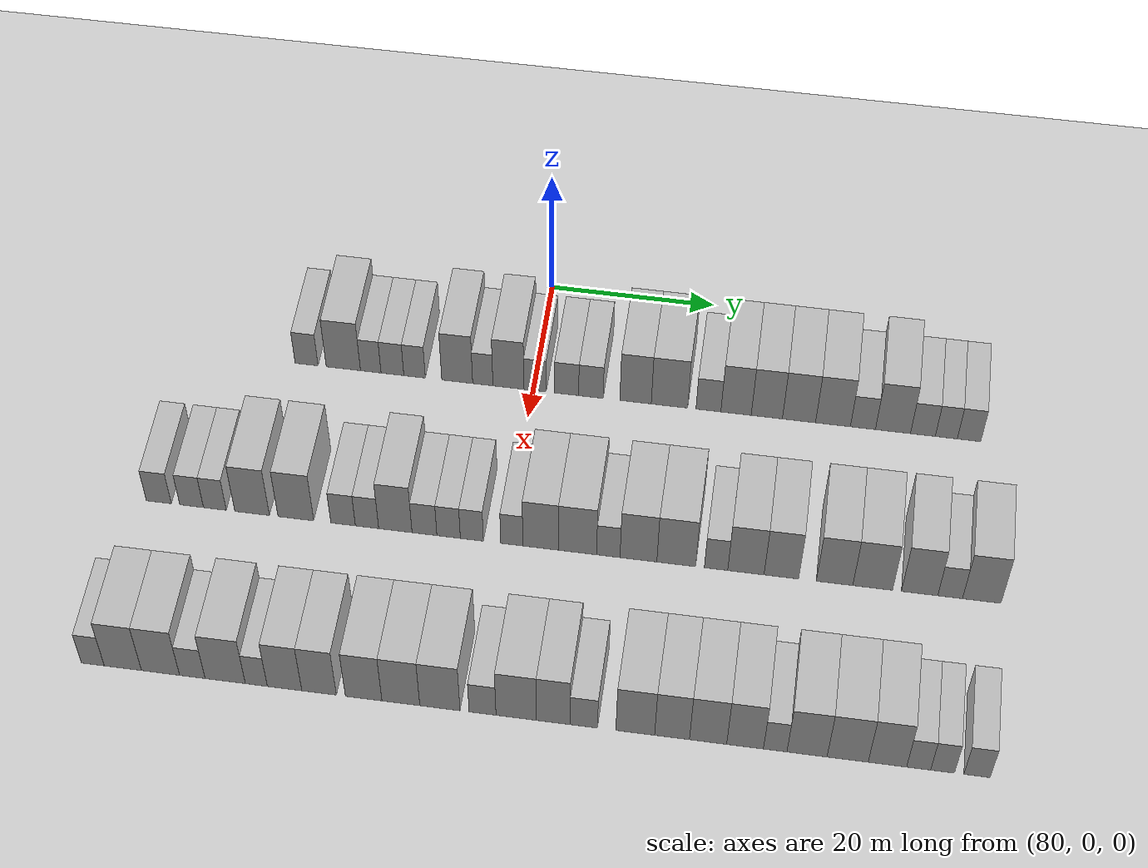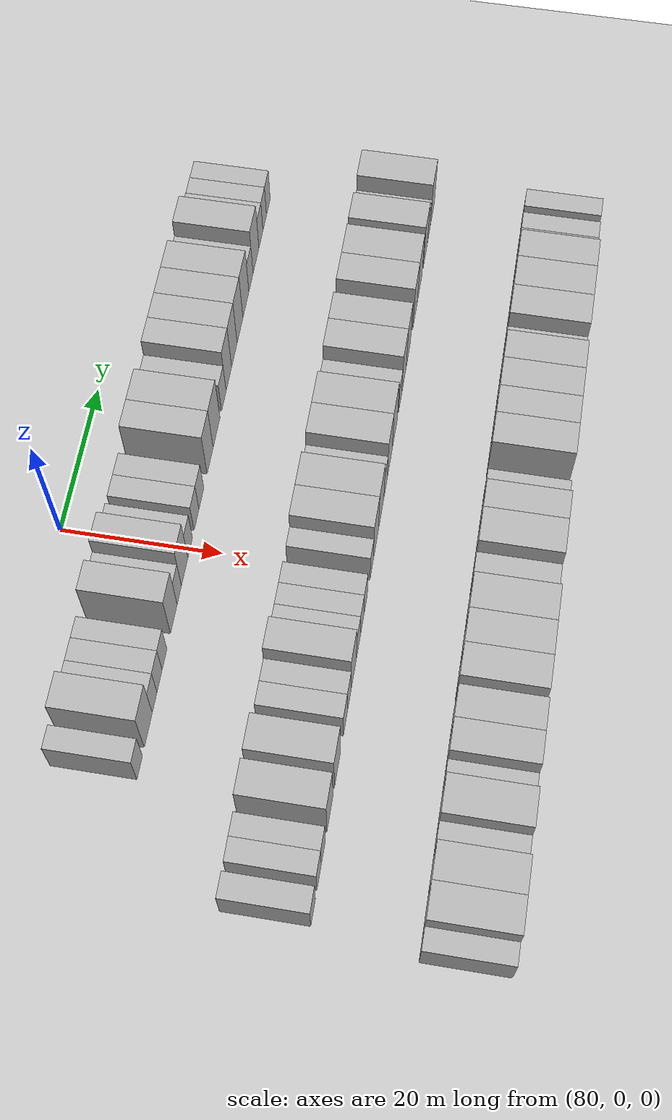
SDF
<sdf version="1.6">
 <world name="default">
  <include>
   <name>ground_plane_2</name>
   <uri>model://HANNAS_ground_plane</uri>
   <pose>100 0 0  0 0 0</pose>
  </include>
  <model name="building_658">
   <static>1</static>
   <pose>91.0000 -27.6144 0 0.000000 0.000000 0.000000</pose>
   <link name="link">
    <pose>0 0 3.00 0 0 0</pose>
    <collision name="collision"><geometry><box><size>10.0000 2.8052 6.0000</size></box></geometry></collision>
    <visual name="visual">
     <cast_shadows>0</cast_shadows>
     <geometry><box><size>10.0000 2.8052 6.0000</size></box></geometry>
     <material>
      <script>
       <uri>model://HANNAS_wall/materials/scripts</uri>
       <uri>model://HANNAS_wall/materials/textures</uri>
       <name>vrc/HANNAS_wall</name>
      </script>
     </material>
    </visual>
   </link>
  </model>
  <model name="building_659">
   <static>1</static>
   <pose>91.0000 -23.1151 0 0.000000 0.000000 0.000000</pose>
   <link name="link">
    <pose>0 0 4.50 0 0 0</pose>
    <collision name="collision"><geometry><box><size>10.0000 4.1933 9.0000</size></box></geometry></collision>
    <visual name="visual">
     <cast_shadows>0</cast_shadows>
     <geometry><box><size>10.0000 4.1933 9.0000</size></box></geometry>
     <material>
      <script>
       <uri>model://HANNAS_wall/materials/scripts</uri>
       <uri>model://HANNAS_wall/materials/textures</uri>
       <name>vrc/HANNAS_wall</name>
      </script>
     </material>
    </visual>
   </link>
  </model>
  <model name="building_660">
   <static>1</static>
   <pose>91.0000 -19.7619 0 0.000000 0.000000 0.000000</pose>
   <link name="link">
    <pose>0 0 3.00 0 0 0</pose>
    <collision name="collision"><geometry><box><size>10.0000 2.5131 6.0000</size></box></geometry></collision>
    <visual name="visual">
     <cast_shadows>0</cast_shadows>
     <geometry><box><size>10.0000 2.5131 6.0000</size></box></geometry>
     <material>
      <script>
       <uri>model://HANNAS_wall/materials/scripts</uri>
       <uri>model://HANNAS_wall/materials/textures</uri>
       <name>vrc/HANNAS_wall</name>
      </script>
     </material>
    </visual>
   </link>
  </model>
  <model name="building_661">
   <static>1</static>
   <pose>91.0000 -17.1167 0 0.000000 0.000000 0.000000</pose>
   <link name="link">
    <pose>0 0 3.00 0 0 0</pose>
    <collision name="collision"><geometry><box><size>10.0000 2.7774 6.0000</size></box></geometry></collision>
    <visual name="visual">
     <cast_shadows>0</cast_shadows>
     <geometry><box><size>10.0000 2.7774 6.0000</size></box></geometry>
     <material>
      <script>
       <uri>model://HANNAS_wall/materials/scripts</uri>
       <uri>model://HANNAS_wall/materials/textures</uri>
       <name>vrc/HANNAS_wall</name>
      </script>
     </material>
    </visual>
   </link>
  </model>
  <model name="building_662">
   <static>1</static>
   <pose>91.0000 -14.4189 0 0.000000 0.000000 0.000000</pose>
   <link name="link">
    <pose>0 0 3.00 0 0 0</pose>
    <collision name="collision"><geometry><box><size>10.0000 2.6183 6.0000</size></box></geometry></collision>
    <visual name="visual">
     <cast_shadows>0</cast_shadows>
     <geometry><box><size>10.0000 2.6183 6.0000</size></box></geometry>
     <material>
      <script>
       <uri>model://HANNAS_wall/materials/scripts</uri>
       <uri>model://HANNAS_wall/materials/textures</uri>
       <name>vrc/HANNAS_wall</name>
      </script>
     </material>
    </visual>
   </link>
  </model>
  <model name="building_663">
   <static>1</static>
   <pose>91.0000 -9.2334 0 0.000000 0.000000 0.000000</pose>
   <link name="link">
    <pose>0 0 4.50 0 0 0</pose>
    <collision name="collision"><geometry><box><size>10.0000 3.7526 9.0000</size></box></geometry></collision>
    <visual name="visual">
     <cast_shadows>0</cast_shadows>
     <geometry><box><size>10.0000 3.7526 9.0000</size></box></geometry>
     <material>
      <script>
       <uri>model://HANNAS_wall/materials/scripts</uri>
       <uri>model://HANNAS_wall/materials/textures</uri>
       <name>vrc/HANNAS_wall</name>
      </script>
     </material>
    </visual>
   </link>
  </model>
  <model name="building_664">
   <static>1</static>
   <pose>91.0000 -6.1307 0 0.000000 0.000000 0.000000</pose>
   <link name="link">
    <pose>0 0 3.00 0 0 0</pose>
    <collision name="collision"><geometry><box><size>10.0000 2.4529 6.0000</size></box></geometry></collision>
    <visual name="visual">
     <cast_shadows>0</cast_shadows>
     <geometry><box><size>10.0000 2.4529 6.0000</size></box></geometry>
     <material>
      <script>
       <uri>model://HANNAS_wall/materials/scripts</uri>
       <uri>model://HANNAS_wall/materials/textures</uri>
       <name>vrc/HANNAS_wall</name>
      </script>
     </material>
    </visual>
   </link>
  </model>
  <model name="building_665">
   <static>1</static>
   <pose>91.0000 -3.0283 0 0.000000 0.000000 0.000000</pose>
   <link name="link">
    <pose>0 0 4.50 0 0 0</pose>
    <collision name="collision"><geometry><box><size>10.0000 3.7518 9.0000</size></box></geometry></collision>
    <visual name="visual">
     <cast_shadows>0</cast_shadows>
     <geometry><box><size>10.0000 3.7518 9.0000</size></box></geometry>
     <material>
      <script>
       <uri>model://HANNAS_wall/materials/scripts</uri>
       <uri>model://HANNAS_wall/materials/textures</uri>
       <name>vrc/HANNAS_wall</name>
      </script>
     </material>
    </visual>
   </link>
  </model>
  <model name="building_666">
   <static>1</static>
   <pose>91.0000 0.1908 0 0.000000 0.000000 0.000000</pose>
   <link name="link">
    <pose>0 0 3.00 0 0 0</pose>
    <collision name="collision"><geometry><box><size>10.0000 2.6865 6.0000</size></box></geometry></collision>
    <visual name="visual">
     <cast_shadows>0</cast_shadows>
     <geometry><box><size>10.0000 2.6865 6.0000</size></box></geometry>
     <material>
      <script>
       <uri>model://HANNAS_wall/materials/scripts</uri>
       <uri>model://HANNAS_wall/materials/textures</uri>
       <name>vrc/HANNAS_wall</name>
      </script>
     </material>
    </visual>
   </link>
  </model>
  <model name="building_667">
   <static>1</static>
   <pose>91.0000 3.9894 0 0.000000 0.000000 0.000000</pose>
   <link name="link">
    <pose>0 0 3.00 0 0 0</pose>
    <collision name="collision"><geometry><box><size>10.0000 2.9107 6.0000</size></box></geometry></collision>
    <visual name="visual">
     <cast_shadows>0</cast_shadows>
     <geometry><box><size>10.0000 2.9107 6.0000</size></box></geometry>
     <material>
      <script>
       <uri>model://HANNAS_wall/materials/scripts</uri>
       <uri>model://HANNAS_wall/materials/textures</uri>
       <name>vrc/HANNAS_wall</name>
      </script>
     </material>
    </visual>
   </link>
  </model>
  <model name="building_668">
   <static>1</static>
   <pose>91.0000 6.9192 0 0.000000 0.000000 0.000000</pose>
   <link name="link">
    <pose>0 0 3.00 0 0 0</pose>
    <collision name="collision"><geometry><box><size>10.0000 2.9488 6.0000</size></box></geometry></collision>
    <visual name="visual">
     <cast_shadows>0</cast_shadows>
     <geometry><box><size>10.0000 2.9488 6.0000</size></box></geometry>
     <material>
      <script>
       <uri>model://HANNAS_wall/materials/scripts</uri>
       <uri>model://HANNAS_wall/materials/textures</uri>
       <name>vrc/HANNAS_wall</name>
      </script>
     </material>
    </visual>
   </link>
  </model>
  <model name="building_669">
   <static>1</static>
   <pose>91.0000 12.2775 0 0.000000 0.000000 0.000000</pose>
   <link name="link">
    <pose>0 0 4.50 0 0 0</pose>
    <collision name="collision"><geometry><box><size>10.0000 3.7679 9.0000</size></box></geometry></collision>
    <visual name="visual">
     <cast_shadows>0</cast_shadows>
     <geometry><box><size>10.0000 3.7679 9.0000</size></box></geometry>
     <material>
      <script>
       <uri>model://HANNAS_wall/materials/scripts</uri>
       <uri>model://HANNAS_wall/materials/textures</uri>
       <name>vrc/HANNAS_wall</name>
      </script>
     </material>
    </visual>
   </link>
  </model>
  <model name="building_670">
   <static>1</static>
   <pose>91.0000 16.3368 0 0.000000 0.000000 0.000000</pose>
   <link name="link">
    <pose>0 0 4.50 0 0 0</pose>
    <collision name="collision"><geometry><box><size>10.0000 4.3507 9.0000</size></box></geometry></collision>
    <visual name="visual">
     <cast_shadows>0</cast_shadows>
     <geometry><box><size>10.0000 4.3507 9.0000</size></box></geometry>
     <material>
      <script>
       <uri>model://HANNAS_wall/materials/scripts</uri>
       <uri>model://HANNAS_wall/materials/textures</uri>
       <name>vrc/HANNAS_wall</name>
      </script>
     </material>
    </visual>
   </link>
  </model>
  <model name="building_671">
   <static>1</static>
   <pose>91.0000 20.9935 0 0.000000 0.000000 0.000000</pose>
   <link name="link">
    <pose>0 0 3.00 0 0 0</pose>
    <collision name="collision"><geometry><box><size>10.0000 2.9627 6.0000</size></box></geometry></collision>
    <visual name="visual">
     <cast_shadows>0</cast_shadows>
     <geometry><box><size>10.0000 2.9627 6.0000</size></box></geometry>
     <material>
      <script>
       <uri>model://HANNAS_wall/materials/scripts</uri>
       <uri>model://HANNAS_wall/materials/textures</uri>
       <name>vrc/HANNAS_wall</name>
      </script>
     </material>
    </visual>
   </link>
  </model>
  <model name="building_672">
   <static>1</static>
   <pose>91.0000 24.2804 0 0.000000 0.000000 0.000000</pose>
   <link name="link">
    <pose>0 0 4.50 0 0 0</pose>
    <collision name="collision"><geometry><box><size>10.0000 3.6111 9.0000</size></box></geometry></collision>
    <visual name="visual">
     <cast_shadows>0</cast_shadows>
     <geometry><box><size>10.0000 3.6111 9.0000</size></box></geometry>
     <material>
      <script>
       <uri>model://HANNAS_wall/materials/scripts</uri>
       <uri>model://HANNAS_wall/materials/textures</uri>
       <name>vrc/HANNAS_wall</name>
      </script>
     </material>
    </visual>
   </link>
  </model>
  <model name="building_673">
   <static>1</static>
   <pose>91.0000 27.9363 0 0.000000 0.000000 0.000000</pose>
   <link name="link">
    <pose>0 0 4.50 0 0 0</pose>
    <collision name="collision"><geometry><box><size>10.0000 3.7006 9.0000</size></box></geometry></collision>
    <visual name="visual">
     <cast_shadows>0</cast_shadows>
     <geometry><box><size>10.0000 3.7006 9.0000</size></box></geometry>
     <material>
      <script>
       <uri>model://HANNAS_wall/materials/scripts</uri>
       <uri>model://HANNAS_wall/materials/textures</uri>
       <name>vrc/HANNAS_wall</name>
      </script>
     </material>
    </visual>
   </link>
  </model>
  <model name="building_674">
   <static>1</static>
   <pose>91.0000 31.7528 0 0.000000 0.000000 0.000000</pose>
   <link name="link">
    <pose>0 0 4.50 0 0 0</pose>
    <collision name="collision"><geometry><box><size>10.0000 3.9324 9.0000</size></box></geometry></collision>
    <visual name="visual">
     <cast_shadows>0</cast_shadows>
     <geometry><box><size>10.0000 3.9324 9.0000</size></box></geometry>
     <material>
      <script>
       <uri>model://HANNAS_wall/materials/scripts</uri>
       <uri>model://HANNAS_wall/materials/textures</uri>
       <name>vrc/HANNAS_wall</name>
      </script>
     </material>
    </visual>
   </link>
  </model>
  <model name="building_675">
   <static>1</static>
   <pose>91.0000 35.7812 0 0.000000 0.000000 0.000000</pose>
   <link name="link">
    <pose>0 0 4.50 0 0 0</pose>
    <collision name="collision"><geometry><box><size>10.0000 4.1246 9.0000</size></box></geometry></collision>
    <visual name="visual">
     <cast_shadows>0</cast_shadows>
     <geometry><box><size>10.0000 4.1246 9.0000</size></box></geometry>
     <material>
      <script>
       <uri>model://HANNAS_wall/materials/scripts</uri>
       <uri>model://HANNAS_wall/materials/textures</uri>
       <name>vrc/HANNAS_wall</name>
      </script>
     </material>
    </visual>
   </link>
  </model>
  <model name="building_676">
   <static>1</static>
   <pose>91.0000 39.3204 0 0.000000 0.000000 0.000000</pose>
   <link name="link">
    <pose>0 0 3.00 0 0 0</pose>
    <collision name="collision"><geometry><box><size>10.0000 2.9537 6.0000</size></box></geometry></collision>
    <visual name="visual">
     <cast_shadows>0</cast_shadows>
     <geometry><box><size>10.0000 2.9537 6.0000</size></box></geometry>
     <material>
      <script>
       <uri>model://HANNAS_wall/materials/scripts</uri>
       <uri>model://HANNAS_wall/materials/textures</uri>
       <name>vrc/HANNAS_wall</name>
      </script>
     </material>
    </visual>
   </link>
  </model>
  <model name="building_677">
   <static>1</static>
   <pose>91.0000 42.8588 0 0.000000 0.000000 0.000000</pose>
   <link name="link">
    <pose>0 0 4.50 0 0 0</pose>
    <collision name="collision"><geometry><box><size>10.0000 4.1232 9.0000</size></box></geometry></collision>
    <visual name="visual">
     <cast_shadows>0</cast_shadows>
     <geometry><box><size>10.0000 4.1232 9.0000</size></box></geometry>
     <material>
      <script>
       <uri>model://HANNAS_wall/materials/scripts</uri>
       <uri>model://HANNAS_wall/materials/textures</uri>
       <name>vrc/HANNAS_wall</name>
      </script>
     </material>
    </visual>
   </link>
  </model>
  <model name="building_678">
   <static>1</static>
   <pose>91.0000 46.3786 0 0.000000 0.000000 0.000000</pose>
   <link name="link">
    <pose>0 0 3.00 0 0 0</pose>
    <collision name="collision"><geometry><box><size>10.0000 2.9165 6.0000</size></box></geometry></collision>
    <visual name="visual">
     <cast_shadows>0</cast_shadows>
     <geometry><box><size>10.0000 2.9165 6.0000</size></box></geometry>
     <material>
      <script>
       <uri>model://HANNAS_wall/materials/scripts</uri>
       <uri>model://HANNAS_wall/materials/textures</uri>
       <name>vrc/HANNAS_wall</name>
      </script>
     </material>
    </visual>
   </link>
  </model>
  <model name="building_679">
   <static>1</static>
   <pose>91.0000 49.1234 0 0.000000 0.000000 0.000000</pose>
   <link name="link">
    <pose>0 0 3.00 0 0 0</pose>
    <collision name="collision"><geometry><box><size>10.0000 2.5733 6.0000</size></box></geometry></collision>
    <visual name="visual">
     <cast_shadows>0</cast_shadows>
     <geometry><box><size>10.0000 2.5733 6.0000</size></box></geometry>
     <material>
      <script>
       <uri>model://HANNAS_wall/materials/scripts</uri>
       <uri>model://HANNAS_wall/materials/textures</uri>
       <name>vrc/HANNAS_wall</name>
      </script>
     </material>
    </visual>
   </link>
  </model>
  <model name="building_680">
   <static>1</static>
   <pose>91.0000 51.7889 0 0.000000 0.000000 0.000000</pose>
   <link name="link">
    <pose>0 0 3.00 0 0 0</pose>
    <collision name="collision"><geometry><box><size>10.0000 2.7576 6.0000</size></box></geometry></collision>
    <visual name="visual">
     <cast_shadows>0</cast_shadows>
     <geometry><box><size>10.0000 2.7576 6.0000</size></box></geometry>
     <material>
      <script>
       <uri>model://HANNAS_wall/materials/scripts</uri>
       <uri>model://HANNAS_wall/materials/textures</uri>
       <name>vrc/HANNAS_wall</name>
      </script>
     </material>
    </visual>
   </link>
  </model>
  <model name="building_844">
   <static>1</static>
   <pose>113.0000 -40.4716 0 0.000000 0.000000 0.000000</pose>
   <link name="link">
    <pose>0 0 3.00 0 0 0</pose>
    <collision name="collision"><geometry><box><size>10.0000 2.9541 6.0000</size></box></geometry></collision>
    <visual name="visual">
     <cast_shadows>0</cast_shadows>
     <geometry><box><size>10.0000 2.9541 6.0000</size></box></geometry>
     <material>
      <script>
       <uri>model://HANNAS_wall/materials/scripts</uri>
       <uri>model://HANNAS_wall/materials/textures</uri>
       <name>vrc/HANNAS_wall</name>
      </script>
     </material>
    </visual>
   </link>
  </model>
  <model name="building_845">
   <static>1</static>
   <pose>113.0000 -36.5989 0 0.000000 0.000000 0.000000</pose>
   <link name="link">
    <pose>0 0 3.00 0 0 0</pose>
    <collision name="collision"><geometry><box><size>10.0000 2.7912 6.0000</size></box></geometry></collision>
    <visual name="visual">
     <cast_shadows>0</cast_shadows>
     <geometry><box><size>10.0000 2.7912 6.0000</size></box></geometry>
     <material>
      <script>
       <uri>model://HANNAS_wall/materials/scripts</uri>
       <uri>model://HANNAS_wall/materials/textures</uri>
       <name>vrc/HANNAS_wall</name>
      </script>
     </material>
    </visual>
   </link>
  </model>
  <model name="building_846">
   <static>1</static>
   <pose>113.0000 -33.8605 0 0.000000 0.000000 0.000000</pose>
   <link name="link">
    <pose>0 0 3.00 0 0 0</pose>
    <collision name="collision"><geometry><box><size>10.0000 2.6855 6.0000</size></box></geometry></collision>
    <visual name="visual">
     <cast_shadows>0</cast_shadows>
     <geometry><box><size>10.0000 2.6855 6.0000</size></box></geometry>
     <material>
      <script>
       <uri>model://HANNAS_wall/materials/scripts</uri>
       <uri>model://HANNAS_wall/materials/textures</uri>
       <name>vrc/HANNAS_wall</name>
      </script>
     </material>
    </visual>
   </link>
  </model>
  <model name="building_847">
   <static>1</static>
   <pose>113.0000 -29.4791 0 0.000000 0.000000 0.000000</pose>
   <link name="link">
    <pose>0 0 4.50 0 0 0</pose>
    <collision name="collision"><geometry><box><size>10.0000 4.0773 9.0000</size></box></geometry></collision>
    <visual name="visual">
     <cast_shadows>0</cast_shadows>
     <geometry><box><size>10.0000 4.0773 9.0000</size></box></geometry>
     <material>
      <script>
       <uri>model://HANNAS_wall/materials/scripts</uri>
       <uri>model://HANNAS_wall/materials/textures</uri>
       <name>vrc/HANNAS_wall</name>
      </script>
     </material>
    </visual>
   </link>
  </model>
  <model name="building_848">
   <static>1</static>
   <pose>113.0000 -24.3465 0 0.000000 0.000000 0.000000</pose>
   <link name="link">
    <pose>0 0 4.50 0 0 0</pose>
    <collision name="collision"><geometry><box><size>10.0000 4.1878 9.0000</size></box></geometry></collision>
    <visual name="visual">
     <cast_shadows>0</cast_shadows>
     <geometry><box><size>10.0000 4.1878 9.0000</size></box></geometry>
     <material>
      <script>
       <uri>model://HANNAS_wall/materials/scripts</uri>
       <uri>model://HANNAS_wall/materials/textures</uri>
       <name>vrc/HANNAS_wall</name>
      </script>
     </material>
    </visual>
   </link>
  </model>
  <model name="building_849">
   <static>1</static>
   <pose>113.0000 -18.8224 0 0.000000 0.000000 0.000000</pose>
   <link name="link">
    <pose>0 0 3.00 0 0 0</pose>
    <collision name="collision"><geometry><box><size>10.0000 2.8604 6.0000</size></box></geometry></collision>
    <visual name="visual">
     <cast_shadows>0</cast_shadows>
     <geometry><box><size>10.0000 2.8604 6.0000</size></box></geometry>
     <material>
      <script>
       <uri>model://HANNAS_wall/materials/scripts</uri>
       <uri>model://HANNAS_wall/materials/textures</uri>
       <name>vrc/HANNAS_wall</name>
      </script>
     </material>
    </visual>
   </link>
  </model>
  <model name="building_850">
   <static>1</static>
   <pose>113.0000 -16.0371 0 0.000000 0.000000 0.000000</pose>
   <link name="link">
    <pose>0 0 3.00 0 0 0</pose>
    <collision name="collision"><geometry><box><size>10.0000 2.7104 6.0000</size></box></geometry></collision>
    <visual name="visual">
     <cast_shadows>0</cast_shadows>
     <geometry><box><size>10.0000 2.7104 6.0000</size></box></geometry>
     <material>
      <script>
       <uri>model://HANNAS_wall/materials/scripts</uri>
       <uri>model://HANNAS_wall/materials/textures</uri>
       <name>vrc/HANNAS_wall</name>
      </script>
     </material>
    </visual>
   </link>
  </model>
  <model name="building_851">
   <static>1</static>
   <pose>113.0000 -12.7393 0 0.000000 0.000000 0.000000</pose>
   <link name="link">
    <pose>0 0 4.50 0 0 0</pose>
    <collision name="collision"><geometry><box><size>10.0000 3.8851 9.0000</size></box></geometry></collision>
    <visual name="visual">
     <cast_shadows>0</cast_shadows>
     <geometry><box><size>10.0000 3.8851 9.0000</size></box></geometry>
     <material>
      <script>
       <uri>model://HANNAS_wall/materials/scripts</uri>
       <uri>model://HANNAS_wall/materials/textures</uri>
       <name>vrc/HANNAS_wall</name>
      </script>
     </material>
    </visual>
   </link>
  </model>
  <model name="building_852">
   <static>1</static>
   <pose>113.0000 -9.3577 0 0.000000 0.000000 0.000000</pose>
   <link name="link">
    <pose>0 0 3.00 0 0 0</pose>
    <collision name="collision"><geometry><box><size>10.0000 2.8780 6.0000</size></box></geometry></collision>
    <visual name="visual">
     <cast_shadows>0</cast_shadows>
     <geometry><box><size>10.0000 2.8780 6.0000</size></box></geometry>
     <material>
      <script>
       <uri>model://HANNAS_wall/materials/scripts</uri>
       <uri>model://HANNAS_wall/materials/textures</uri>
       <name>vrc/HANNAS_wall</name>
      </script>
     </material>
    </visual>
   </link>
  </model>
  <model name="building_853">
   <static>1</static>
   <pose>113.0000 -6.5596 0 0.000000 0.000000 0.000000</pose>
   <link name="link">
    <pose>0 0 3.00 0 0 0</pose>
    <collision name="collision"><geometry><box><size>10.0000 2.7182 6.0000</size></box></geometry></collision>
    <visual name="visual">
     <cast_shadows>0</cast_shadows>
     <geometry><box><size>10.0000 2.7182 6.0000</size></box></geometry>
     <material>
      <script>
       <uri>model://HANNAS_wall/materials/scripts</uri>
       <uri>model://HANNAS_wall/materials/textures</uri>
       <name>vrc/HANNAS_wall</name>
      </script>
     </material>
    </visual>
   </link>
  </model>
  <model name="building_854">
   <static>1</static>
   <pose>113.0000 -3.8682 0 0.000000 0.000000 0.000000</pose>
   <link name="link">
    <pose>0 0 3.00 0 0 0</pose>
    <collision name="collision"><geometry><box><size>10.0000 2.6647 6.0000</size></box></geometry></collision>
    <visual name="visual">
     <cast_shadows>0</cast_shadows>
     <geometry><box><size>10.0000 2.6647 6.0000</size></box></geometry>
     <material>
      <script>
       <uri>model://HANNAS_wall/materials/scripts</uri>
       <uri>model://HANNAS_wall/materials/textures</uri>
       <name>vrc/HANNAS_wall</name>
      </script>
     </material>
    </visual>
   </link>
  </model>
  <model name="building_855">
   <static>1</static>
   <pose>113.0000 0.7426 0 0.000000 0.000000 0.000000</pose>
   <link name="link">
    <pose>0 0 3.00 0 0 0</pose>
    <collision name="collision"><geometry><box><size>10.0000 2.5569 6.0000</size></box></geometry></collision>
    <visual name="visual">
     <cast_shadows>0</cast_shadows>
     <geometry><box><size>10.0000 2.5569 6.0000</size></box></geometry>
     <material>
      <script>
       <uri>model://HANNAS_wall/materials/scripts</uri>
       <uri>model://HANNAS_wall/materials/textures</uri>
       <name>vrc/HANNAS_wall</name>
      </script>
     </material>
    </visual>
   </link>
  </model>
  <model name="building_856">
   <static>1</static>
   <pose>113.0000 4.0522 0 0.000000 0.000000 0.000000</pose>
   <link name="link">
    <pose>0 0 4.50 0 0 0</pose>
    <collision name="collision"><geometry><box><size>10.0000 4.0625 9.0000</size></box></geometry></collision>
    <visual name="visual">
     <cast_shadows>0</cast_shadows>
     <geometry><box><size>10.0000 4.0625 9.0000</size></box></geometry>
     <material>
      <script>
       <uri>model://HANNAS_wall/materials/scripts</uri>
       <uri>model://HANNAS_wall/materials/textures</uri>
       <name>vrc/HANNAS_wall</name>
      </script>
     </material>
    </visual>
   </link>
  </model>
  <model name="building_857">
   <static>1</static>
   <pose>113.0000 8.2826 0 0.000000 0.000000 0.000000</pose>
   <link name="link">
    <pose>0 0 4.50 0 0 0</pose>
    <collision name="collision"><geometry><box><size>10.0000 4.3982 9.0000</size></box></geometry></collision>
    <visual name="visual">
     <cast_shadows>0</cast_shadows>
     <geometry><box><size>10.0000 4.3982 9.0000</size></box></geometry>
     <material>
      <script>
       <uri>model://HANNAS_wall/materials/scripts</uri>
       <uri>model://HANNAS_wall/materials/textures</uri>
       <name>vrc/HANNAS_wall</name>
      </script>
     </material>
    </visual>
   </link>
  </model>
  <model name="building_858">
   <static>1</static>
   <pose>113.0000 11.8229 0 0.000000 0.000000 0.000000</pose>
   <link name="link">
    <pose>0 0 3.00 0 0 0</pose>
    <collision name="collision"><geometry><box><size>10.0000 2.6826 6.0000</size></box></geometry></collision>
    <visual name="visual">
     <cast_shadows>0</cast_shadows>
     <geometry><box><size>10.0000 2.6826 6.0000</size></box></geometry>
     <material>
      <script>
       <uri>model://HANNAS_wall/materials/scripts</uri>
       <uri>model://HANNAS_wall/materials/textures</uri>
       <name>vrc/HANNAS_wall</name>
      </script>
     </material>
    </visual>
   </link>
  </model>
  <model name="building_859">
   <static>1</static>
   <pose>113.0000 15.2706 0 0.000000 0.000000 0.000000</pose>
   <link name="link">
    <pose>0 0 4.50 0 0 0</pose>
    <collision name="collision"><geometry><box><size>10.0000 4.2128 9.0000</size></box></geometry></collision>
    <visual name="visual">
     <cast_shadows>0</cast_shadows>
     <geometry><box><size>10.0000 4.2128 9.0000</size></box></geometry>
     <material>
      <script>
       <uri>model://HANNAS_wall/materials/scripts</uri>
       <uri>model://HANNAS_wall/materials/textures</uri>
       <name>vrc/HANNAS_wall</name>
      </script>
     </material>
    </visual>
   </link>
  </model>
  <model name="building_860">
   <static>1</static>
   <pose>113.0000 19.5857 0 0.000000 0.000000 0.000000</pose>
   <link name="link">
    <pose>0 0 4.50 0 0 0</pose>
    <collision name="collision"><geometry><box><size>10.0000 4.4175 9.0000</size></box></geometry></collision>
    <visual name="visual">
     <cast_shadows>0</cast_shadows>
     <geometry><box><size>10.0000 4.4175 9.0000</size></box></geometry>
     <material>
      <script>
       <uri>model://HANNAS_wall/materials/scripts</uri>
       <uri>model://HANNAS_wall/materials/textures</uri>
       <name>vrc/HANNAS_wall</name>
      </script>
     </material>
    </visual>
   </link>
  </model>
  <model name="building_861">
   <static>1</static>
   <pose>113.0000 24.1202 0 0.000000 0.000000 0.000000</pose>
   <link name="link">
    <pose>0 0 3.00 0 0 0</pose>
    <collision name="collision"><geometry><box><size>10.0000 2.6515 6.0000</size></box></geometry></collision>
    <visual name="visual">
     <cast_shadows>0</cast_shadows>
     <geometry><box><size>10.0000 2.6515 6.0000</size></box></geometry>
     <material>
      <script>
       <uri>model://HANNAS_wall/materials/scripts</uri>
       <uri>model://HANNAS_wall/materials/textures</uri>
       <name>vrc/HANNAS_wall</name>
      </script>
     </material>
    </visual>
   </link>
  </model>
  <model name="building_862">
   <static>1</static>
   <pose>113.0000 27.5031 0 0.000000 0.000000 0.000000</pose>
   <link name="link">
    <pose>0 0 4.50 0 0 0</pose>
    <collision name="collision"><geometry><box><size>10.0000 4.1144 9.0000</size></box></geometry></collision>
    <visual name="visual">
     <cast_shadows>0</cast_shadows>
     <geometry><box><size>10.0000 4.1144 9.0000</size></box></geometry>
     <material>
      <script>
       <uri>model://HANNAS_wall/materials/scripts</uri>
       <uri>model://HANNAS_wall/materials/textures</uri>
       <name>vrc/HANNAS_wall</name>
      </script>
     </material>
    </visual>
   </link>
  </model>
  <model name="building_863">
   <static>1</static>
   <pose>113.0000 31.5173 0 0.000000 0.000000 0.000000</pose>
   <link name="link">
    <pose>0 0 4.50 0 0 0</pose>
    <collision name="collision"><geometry><box><size>10.0000 3.9139 9.0000</size></box></geometry></collision>
    <visual name="visual">
     <cast_shadows>0</cast_shadows>
     <geometry><box><size>10.0000 3.9139 9.0000</size></box></geometry>
     <material>
      <script>
       <uri>model://HANNAS_wall/materials/scripts</uri>
       <uri>model://HANNAS_wall/materials/textures</uri>
       <name>vrc/HANNAS_wall</name>
      </script>
     </material>
    </visual>
   </link>
  </model>
  <model name="building_864">
   <static>1</static>
   <pose>113.0000 37.5353 0 0.000000 0.000000 0.000000</pose>
   <link name="link">
    <pose>0 0 4.50 0 0 0</pose>
    <collision name="collision"><geometry><box><size>10.0000 4.1220 9.0000</size></box></geometry></collision>
    <visual name="visual">
     <cast_shadows>0</cast_shadows>
     <geometry><box><size>10.0000 4.1220 9.0000</size></box></geometry>
     <material>
      <script>
       <uri>model://HANNAS_wall/materials/scripts</uri>
       <uri>model://HANNAS_wall/materials/textures</uri>
       <name>vrc/HANNAS_wall</name>
      </script>
     </material>
    </visual>
   </link>
  </model>
  <model name="building_865">
   <static>1</static>
   <pose>113.0000 41.8276 0 0.000000 0.000000 0.000000</pose>
   <link name="link">
    <pose>0 0 4.50 0 0 0</pose>
    <collision name="collision"><geometry><box><size>10.0000 4.4626 9.0000</size></box></geometry></collision>
    <visual name="visual">
     <cast_shadows>0</cast_shadows>
     <geometry><box><size>10.0000 4.4626 9.0000</size></box></geometry>
     <material>
      <script>
       <uri>model://HANNAS_wall/materials/scripts</uri>
       <uri>model://HANNAS_wall/materials/textures</uri>
       <name>vrc/HANNAS_wall</name>
      </script>
     </material>
    </visual>
   </link>
  </model>
  <model name="building_866">
   <static>1</static>
   <pose>113.0000 47.0938 0 0.000000 0.000000 0.000000</pose>
   <link name="link">
    <pose>0 0 4.50 0 0 0</pose>
    <collision name="collision"><geometry><box><size>10.0000 4.0699 9.0000</size></box></geometry></collision>
    <visual name="visual">
     <cast_shadows>0</cast_shadows>
     <geometry><box><size>10.0000 4.0699 9.0000</size></box></geometry>
     <material>
      <script>
       <uri>model://HANNAS_wall/materials/scripts</uri>
       <uri>model://HANNAS_wall/materials/textures</uri>
       <name>vrc/HANNAS_wall</name>
      </script>
     </material>
    </visual>
   </link>
  </model>
  <model name="building_867">
   <static>1</static>
   <pose>113.0000 50.5115 0 0.000000 0.000000 0.000000</pose>
   <link name="link">
    <pose>0 0 3.00 0 0 0</pose>
    <collision name="collision"><geometry><box><size>10.0000 2.7656 6.0000</size></box></geometry></collision>
    <visual name="visual">
     <cast_shadows>0</cast_shadows>
     <geometry><box><size>10.0000 2.7656 6.0000</size></box></geometry>
     <material>
      <script>
       <uri>model://HANNAS_wall/materials/scripts</uri>
       <uri>model://HANNAS_wall/materials/textures</uri>
       <name>vrc/HANNAS_wall</name>
      </script>
     </material>
    </visual>
   </link>
  </model>
  <model name="building_868">
   <static>1</static>
   <pose>113.0000 54.0395 0 0.000000 0.000000 0.000000</pose>
   <link name="link">
    <pose>0 0 4.50 0 0 0</pose>
    <collision name="collision"><geometry><box><size>10.0000 4.2904 9.0000</size></box></geometry></collision>
    <visual name="visual">
     <cast_shadows>0</cast_shadows>
     <geometry><box><size>10.0000 4.2904 9.0000</size></box></geometry>
     <material>
      <script>
       <uri>model://HANNAS_wall/materials/scripts</uri>
       <uri>model://HANNAS_wall/materials/textures</uri>
       <name>vrc/HANNAS_wall</name>
      </script>
     </material>
    </visual>
   </link>
  </model>
  <model name="building_1024">
   <static>1</static>
   <pose>135.0000 -42.5487 0 0.000000 0.000000 0.000000</pose>
   <link name="link">
    <pose>0 0 3.00 0 0 0</pose>
    <collision name="collision"><geometry><box><size>10.0000 2.5905 6.0000</size></box></geometry></collision>
    <visual name="visual">
     <cast_shadows>0</cast_shadows>
     <geometry><box><size>10.0000 2.5905 6.0000</size></box></geometry>
     <material>
      <script>
       <uri>model://HANNAS_wall/materials/scripts</uri>
       <uri>model://HANNAS_wall/materials/textures</uri>
       <name>vrc/HANNAS_wall</name>
      </script>
     </material>
    </visual>
   </link>
  </model>
  <model name="building_1025">
   <static>1</static>
   <pose>135.0000 -39.1544 0 0.000000 0.000000 0.000000</pose>
   <link name="link">
    <pose>0 0 4.50 0 0 0</pose>
    <collision name="collision"><geometry><box><size>10.0000 4.1981 9.0000</size></box></geometry></collision>
    <visual name="visual">
     <cast_shadows>0</cast_shadows>
     <geometry><box><size>10.0000 4.1981 9.0000</size></box></geometry>
     <material>
      <script>
       <uri>model://HANNAS_wall/materials/scripts</uri>
       <uri>model://HANNAS_wall/materials/textures</uri>
       <name>vrc/HANNAS_wall</name>
      </script>
     </material>
    </visual>
   </link>
  </model>
  <model name="building_1026">
   <static>1</static>
   <pose>135.0000 -34.9132 0 0.000000 0.000000 0.000000</pose>
   <link name="link">
    <pose>0 0 4.50 0 0 0</pose>
    <collision name="collision"><geometry><box><size>10.0000 4.2843 9.0000</size></box></geometry></collision>
    <visual name="visual">
     <cast_shadows>0</cast_shadows>
     <geometry><box><size>10.0000 4.2843 9.0000</size></box></geometry>
     <material>
      <script>
       <uri>model://HANNAS_wall/materials/scripts</uri>
       <uri>model://HANNAS_wall/materials/textures</uri>
       <name>vrc/HANNAS_wall</name>
      </script>
     </material>
    </visual>
   </link>
  </model>
  <model name="building_1027">
   <static>1</static>
   <pose>135.0000 -31.3379 0 0.000000 0.000000 0.000000</pose>
   <link name="link">
    <pose>0 0 3.00 0 0 0</pose>
    <collision name="collision"><geometry><box><size>10.0000 2.8662 6.0000</size></box></geometry></collision>
    <visual name="visual">
     <cast_shadows>0</cast_shadows>
     <geometry><box><size>10.0000 2.8662 6.0000</size></box></geometry>
     <material>
      <script>
       <uri>model://HANNAS_wall/materials/scripts</uri>
       <uri>model://HANNAS_wall/materials/textures</uri>
       <name>vrc/HANNAS_wall</name>
      </script>
     </material>
    </visual>
   </link>
  </model>
  <model name="building_1028">
   <static>1</static>
   <pose>135.0000 -27.6564 0 0.000000 0.000000 0.000000</pose>
   <link name="link">
    <pose>0 0 4.50 0 0 0</pose>
    <collision name="collision"><geometry><box><size>10.0000 4.4968 9.0000</size></box></geometry></collision>
    <visual name="visual">
     <cast_shadows>0</cast_shadows>
     <geometry><box><size>10.0000 4.4968 9.0000</size></box></geometry>
     <material>
      <script>
       <uri>model://HANNAS_wall/materials/scripts</uri>
       <uri>model://HANNAS_wall/materials/textures</uri>
       <name>vrc/HANNAS_wall</name>
      </script>
     </material>
    </visual>
   </link>
  </model>
  <model name="building_1029">
   <static>1</static>
   <pose>135.0000 -24.1773 0 0.000000 0.000000 0.000000</pose>
   <link name="link">
    <pose>0 0 3.00 0 0 0</pose>
    <collision name="collision"><geometry><box><size>10.0000 2.4614 6.0000</size></box></geometry></collision>
    <visual name="visual">
     <cast_shadows>0</cast_shadows>
     <geometry><box><size>10.0000 2.4614 6.0000</size></box></geometry>
     <material>
      <script>
       <uri>model://HANNAS_wall/materials/scripts</uri>
       <uri>model://HANNAS_wall/materials/textures</uri>
       <name>vrc/HANNAS_wall</name>
      </script>
     </material>
    </visual>
   </link>
  </model>
  <model name="building_1030">
   <static>1</static>
   <pose>135.0000 -21.0224 0 0.000000 0.000000 0.000000</pose>
   <link name="link">
    <pose>0 0 4.50 0 0 0</pose>
    <collision name="collision"><geometry><box><size>10.0000 3.8484 9.0000</size></box></geometry></collision>
    <visual name="visual">
     <cast_shadows>0</cast_shadows>
     <geometry><box><size>10.0000 3.8484 9.0000</size></box></geometry>
     <material>
      <script>
       <uri>model://HANNAS_wall/materials/scripts</uri>
       <uri>model://HANNAS_wall/materials/textures</uri>
       <name>vrc/HANNAS_wall</name>
      </script>
     </material>
    </visual>
   </link>
  </model>
  <model name="building_1031">
   <static>1</static>
   <pose>135.0000 -17.1782 0 0.000000 0.000000 0.000000</pose>
   <link name="link">
    <pose>0 0 4.50 0 0 0</pose>
    <collision name="collision"><geometry><box><size>10.0000 3.8401 9.0000</size></box></geometry></collision>
    <visual name="visual">
     <cast_shadows>0</cast_shadows>
     <geometry><box><size>10.0000 3.8401 9.0000</size></box></geometry>
     <material>
      <script>
       <uri>model://HANNAS_wall/materials/scripts</uri>
       <uri>model://HANNAS_wall/materials/textures</uri>
       <name>vrc/HANNAS_wall</name>
      </script>
     </material>
    </visual>
   </link>
  </model>
  <model name="building_1032">
   <static>1</static>
   <pose>135.0000 -12.2323 0 0.000000 0.000000 0.000000</pose>
   <link name="link">
    <pose>0 0 4.50 0 0 0</pose>
    <collision name="collision"><geometry><box><size>10.0000 4.0516 9.0000</size></box></geometry></collision>
    <visual name="visual">
     <cast_shadows>0</cast_shadows>
     <geometry><box><size>10.0000 4.0516 9.0000</size></box></geometry>
     <material>
      <script>
       <uri>model://HANNAS_wall/materials/scripts</uri>
       <uri>model://HANNAS_wall/materials/textures</uri>
       <name>vrc/HANNAS_wall</name>
      </script>
     </material>
    </visual>
   </link>
  </model>
  <model name="building_1033">
   <static>1</static>
   <pose>135.0000 -8.1142 0 0.000000 0.000000 0.000000</pose>
   <link name="link">
    <pose>0 0 4.50 0 0 0</pose>
    <collision name="collision"><geometry><box><size>10.0000 4.1847 9.0000</size></box></geometry></collision>
    <visual name="visual">
     <cast_shadows>0</cast_shadows>
     <geometry><box><size>10.0000 4.1847 9.0000</size></box></geometry>
     <material>
      <script>
       <uri>model://HANNAS_wall/materials/scripts</uri>
       <uri>model://HANNAS_wall/materials/textures</uri>
       <name>vrc/HANNAS_wall</name>
      </script>
     </material>
    </visual>
   </link>
  </model>
  <model name="building_1034">
   <static>1</static>
   <pose>135.0000 -3.8058 0 0.000000 0.000000 0.000000</pose>
   <link name="link">
    <pose>0 0 4.50 0 0 0</pose>
    <collision name="collision"><geometry><box><size>10.0000 4.4322 9.0000</size></box></geometry></collision>
    <visual name="visual">
     <cast_shadows>0</cast_shadows>
     <geometry><box><size>10.0000 4.4322 9.0000</size></box></geometry>
     <material>
      <script>
       <uri>model://HANNAS_wall/materials/scripts</uri>
       <uri>model://HANNAS_wall/materials/textures</uri>
       <name>vrc/HANNAS_wall</name>
      </script>
     </material>
    </visual>
   </link>
  </model>
  <model name="building_1035">
   <static>1</static>
   <pose>135.0000 0.8872 0 0.000000 0.000000 0.000000</pose>
   <link name="link">
    <pose>0 0 3.00 0 0 0</pose>
    <collision name="collision"><geometry><box><size>10.0000 2.9538 6.0000</size></box></geometry></collision>
    <visual name="visual">
     <cast_shadows>0</cast_shadows>
     <geometry><box><size>10.0000 2.9538 6.0000</size></box></geometry>
     <material>
      <script>
       <uri>model://HANNAS_wall/materials/scripts</uri>
       <uri>model://HANNAS_wall/materials/textures</uri>
       <name>vrc/HANNAS_wall</name>
      </script>
     </material>
    </visual>
   </link>
  </model>
  <model name="building_1036">
   <static>1</static>
   <pose>135.0000 4.5851 0 0.000000 0.000000 0.000000</pose>
   <link name="link">
    <pose>0 0 4.50 0 0 0</pose>
    <collision name="collision"><geometry><box><size>10.0000 4.4418 9.0000</size></box></geometry></collision>
    <visual name="visual">
     <cast_shadows>0</cast_shadows>
     <geometry><box><size>10.0000 4.4418 9.0000</size></box></geometry>
     <material>
      <script>
       <uri>model://HANNAS_wall/materials/scripts</uri>
       <uri>model://HANNAS_wall/materials/textures</uri>
       <name>vrc/HANNAS_wall</name>
      </script>
     </material>
    </visual>
   </link>
  </model>
  <model name="building_1037">
   <static>1</static>
   <pose>135.0000 8.6392 0 0.000000 0.000000 0.000000</pose>
   <link name="link">
    <pose>0 0 4.50 0 0 0</pose>
    <collision name="collision"><geometry><box><size>10.0000 3.6665 9.0000</size></box></geometry></collision>
    <visual name="visual">
     <cast_shadows>0</cast_shadows>
     <geometry><box><size>10.0000 3.6665 9.0000</size></box></geometry>
     <material>
      <script>
       <uri>model://HANNAS_wall/materials/scripts</uri>
       <uri>model://HANNAS_wall/materials/textures</uri>
       <name>vrc/HANNAS_wall</name>
      </script>
     </material>
    </visual>
   </link>
  </model>
  <model name="building_1038">
   <static>1</static>
   <pose>135.0000 11.9699 0 0.000000 0.000000 0.000000</pose>
   <link name="link">
    <pose>0 0 3.00 0 0 0</pose>
    <collision name="collision"><geometry><box><size>10.0000 2.9950 6.0000</size></box></geometry></collision>
    <visual name="visual">
     <cast_shadows>0</cast_shadows>
     <geometry><box><size>10.0000 2.9950 6.0000</size></box></geometry>
     <material>
      <script>
       <uri>model://HANNAS_wall/materials/scripts</uri>
       <uri>model://HANNAS_wall/materials/textures</uri>
       <name>vrc/HANNAS_wall</name>
      </script>
     </material>
    </visual>
   </link>
  </model>
  <model name="building_1039">
   <static>1</static>
   <pose>135.0000 17.5750 0 0.000000 0.000000 0.000000</pose>
   <link name="link">
    <pose>0 0 4.50 0 0 0</pose>
    <collision name="collision"><geometry><box><size>10.0000 4.2152 9.0000</size></box></geometry></collision>
    <visual name="visual">
     <cast_shadows>0</cast_shadows>
     <geometry><box><size>10.0000 4.2152 9.0000</size></box></geometry>
     <material>
      <script>
       <uri>model://HANNAS_wall/materials/scripts</uri>
       <uri>model://HANNAS_wall/materials/textures</uri>
       <name>vrc/HANNAS_wall</name>
      </script>
     </material>
    </visual>
   </link>
  </model>
  <model name="building_1040">
   <static>1</static>
   <pose>135.0000 21.5720 0 0.000000 0.000000 0.000000</pose>
   <link name="link">
    <pose>0 0 4.50 0 0 0</pose>
    <collision name="collision"><geometry><box><size>10.0000 3.7787 9.0000</size></box></geometry></collision>
    <visual name="visual">
     <cast_shadows>0</cast_shadows>
     <geometry><box><size>10.0000 3.7787 9.0000</size></box></geometry>
     <material>
      <script>
       <uri>model://HANNAS_wall/materials/scripts</uri>
       <uri>model://HANNAS_wall/materials/textures</uri>
       <name>vrc/HANNAS_wall</name>
      </script>
     </material>
    </visual>
   </link>
  </model>
  <model name="building_1041">
   <static>1</static>
   <pose>135.0000 25.4731 0 0.000000 0.000000 0.000000</pose>
   <link name="link">
    <pose>0 0 4.50 0 0 0</pose>
    <collision name="collision"><geometry><box><size>10.0000 4.0237 9.0000</size></box></geometry></collision>
    <visual name="visual">
     <cast_shadows>0</cast_shadows>
     <geometry><box><size>10.0000 4.0237 9.0000</size></box></geometry>
     <material>
      <script>
       <uri>model://HANNAS_wall/materials/scripts</uri>
       <uri>model://HANNAS_wall/materials/textures</uri>
       <name>vrc/HANNAS_wall</name>
      </script>
     </material>
    </visual>
   </link>
  </model>
  <model name="building_1042">
   <static>1</static>
   <pose>135.0000 29.4663 0 0.000000 0.000000 0.000000</pose>
   <link name="link">
    <pose>0 0 4.50 0 0 0</pose>
    <collision name="collision"><geometry><box><size>10.0000 3.9626 9.0000</size></box></geometry></collision>
    <visual name="visual">
     <cast_shadows>0</cast_shadows>
     <geometry><box><size>10.0000 3.9626 9.0000</size></box></geometry>
     <material>
      <script>
       <uri>model://HANNAS_wall/materials/scripts</uri>
       <uri>model://HANNAS_wall/materials/textures</uri>
       <name>vrc/HANNAS_wall</name>
      </script>
     </material>
    </visual>
   </link>
  </model>
  <model name="building_1043">
   <static>1</static>
   <pose>135.0000 32.7153 0 0.000000 0.000000 0.000000</pose>
   <link name="link">
    <pose>0 0 3.00 0 0 0</pose>
    <collision name="collision"><geometry><box><size>10.0000 2.5355 6.0000</size></box></geometry></collision>
    <visual name="visual">
     <cast_shadows>0</cast_shadows>
     <geometry><box><size>10.0000 2.5355 6.0000</size></box></geometry>
     <material>
      <script>
       <uri>model://HANNAS_wall/materials/scripts</uri>
       <uri>model://HANNAS_wall/materials/textures</uri>
       <name>vrc/HANNAS_wall</name>
      </script>
     </material>
    </visual>
   </link>
  </model>
  <model name="building_1044">
   <static>1</static>
   <pose>135.0000 36.1365 0 0.000000 0.000000 0.000000</pose>
   <link name="link">
    <pose>0 0 4.50 0 0 0</pose>
    <collision name="collision"><geometry><box><size>10.0000 4.3070 9.0000</size></box></geometry></collision>
    <visual name="visual">
     <cast_shadows>0</cast_shadows>
     <geometry><box><size>10.0000 4.3070 9.0000</size></box></geometry>
     <material>
      <script>
       <uri>model://HANNAS_wall/materials/scripts</uri>
       <uri>model://HANNAS_wall/materials/textures</uri>
       <name>vrc/HANNAS_wall</name>
      </script>
     </material>
    </visual>
   </link>
  </model>
  <model name="building_1045">
   <static>1</static>
   <pose>135.0000 40.4944 0 0.000000 0.000000 0.000000</pose>
   <link name="link">
    <pose>0 0 4.50 0 0 0</pose>
    <collision name="collision"><geometry><box><size>10.0000 4.4089 9.0000</size></box></geometry></collision>
    <visual name="visual">
     <cast_shadows>0</cast_shadows>
     <geometry><box><size>10.0000 4.4089 9.0000</size></box></geometry>
     <material>
      <script>
       <uri>model://HANNAS_wall/materials/scripts</uri>
       <uri>model://HANNAS_wall/materials/textures</uri>
       <name>vrc/HANNAS_wall</name>
      </script>
     </material>
    </visual>
   </link>
  </model>
  <model name="building_1046">
   <static>1</static>
   <pose>135.0000 44.7535 0 0.000000 0.000000 0.000000</pose>
   <link name="link">
    <pose>0 0 4.50 0 0 0</pose>
    <collision name="collision"><geometry><box><size>10.0000 4.1093 9.0000</size></box></geometry></collision>
    <visual name="visual">
     <cast_shadows>0</cast_shadows>
     <geometry><box><size>10.0000 4.1093 9.0000</size></box></geometry>
     <material>
      <script>
       <uri>model://HANNAS_wall/materials/scripts</uri>
       <uri>model://HANNAS_wall/materials/textures</uri>
       <name>vrc/HANNAS_wall</name>
      </script>
     </material>
    </visual>
   </link>
  </model>
  <model name="building_1047">
   <static>1</static>
   <pose>135.0000 48.0877 0 0.000000 0.000000 0.000000</pose>
   <link name="link">
    <pose>0 0 3.00 0 0 0</pose>
    <collision name="collision"><geometry><box><size>10.0000 2.5592 6.0000</size></box></geometry></collision>
    <visual name="visual">
     <cast_shadows>0</cast_shadows>
     <geometry><box><size>10.0000 2.5592 6.0000</size></box></geometry>
     <material>
      <script>
       <uri>model://HANNAS_wall/materials/scripts</uri>
       <uri>model://HANNAS_wall/materials/textures</uri>
       <name>vrc/HANNAS_wall</name>
      </script>
     </material>
    </visual>
   </link>
  </model>
  <model name="building_1048">
   <static>1</static>
   <pose>135.0000 50.6359 0 0.000000 0.000000 0.000000</pose>
   <link name="link">
    <pose>0 0 3.00 0 0 0</pose>
    <collision name="collision"><geometry><box><size>10.0000 2.5372 6.0000</size></box></geometry></collision>
    <visual name="visual">
     <cast_shadows>0</cast_shadows>
     <geometry><box><size>10.0000 2.5372 6.0000</size></box></geometry>
     <material>
      <script>
       <uri>model://HANNAS_wall/materials/scripts</uri>
       <uri>model://HANNAS_wall/materials/textures</uri>
       <name>vrc/HANNAS_wall</name>
      </script>
     </material>
    </visual>
   </link>
  </model>
  <model name="building_1049">
   <static>1</static>
   <pose>135.0000 54.3034 0 0.000000 0.000000 0.000000</pose>
   <link name="link">
    <pose>0 0 3.00 0 0 0</pose>
    <collision name="collision"><geometry><box><size>10.0000 2.7978 6.0000</size></box></geometry></collision>
    <visual name="visual">
     <cast_shadows>0</cast_shadows>
     <geometry><box><size>10.0000 2.7978 6.0000</size></box></geometry>
     <material>
      <script>
       <uri>model://HANNAS_wall/materials/scripts</uri>
       <uri>model://HANNAS_wall/materials/textures</uri>
       <name>vrc/HANNAS_wall</name>
      </script>
     </material>
    </visual>
   </link>
  </model>
 </world>
</sdf>
